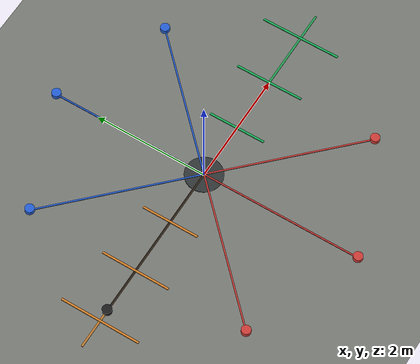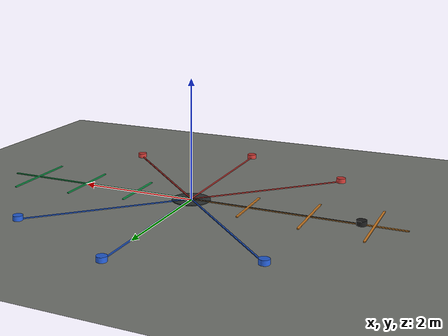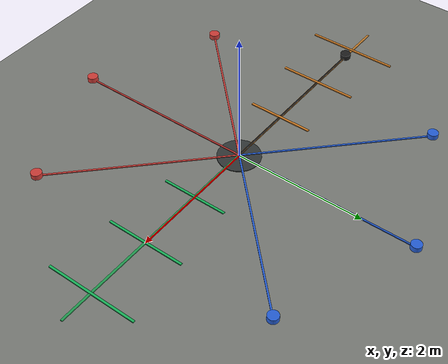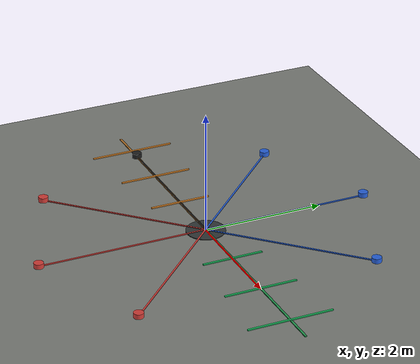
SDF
<?xml version="1.0"?>
<sdf version="1.9">
  <world name="brover_e5_calibration_world">
    <plugin filename="gz-sim-physics-system" name="gz::sim::systems::Physics"/>
    <plugin filename="gz-sim-user-commands-system" name="gz::sim::systems::UserCommands"/>
    <plugin filename="gz-sim-scene-broadcaster-system" name="gz::sim::systems::SceneBroadcaster"/>
    <plugin filename="gz-sim-sensors-system" name="gz::sim::systems::Sensors">
      <render_engine>ogre2</render_engine>
    </plugin>

    <gravity>0 0 -9.81</gravity>
    <atmosphere type="adiabatic"/>
    <scene>
      <ambient>0.36 0.36 0.36 1</ambient>
      <background>0.68 0.71 0.74 1</background>
      <shadows>true</shadows>
    </scene>

    <light name="sun" type="directional">
      <cast_shadows>true</cast_shadows>
      <pose>0 0 10 0 0 0</pose>
      <diffuse>0.95 0.95 0.90 1</diffuse>
      <specular>0.10 0.10 0.10 1</specular>
      <direction>-0.45 0.25 -0.86</direction>
    </light>

    <model name="ground_plane">
      <static>true</static>
      <link name="link">
        <collision name="collision">
          <geometry>
            <plane>
              <normal>0 0 1</normal>
              <size>10 10</size>
            </plane>
          </geometry>
          <surface>
            <friction>
              <ode>
                <mu>1.0</mu>
                <mu2>1.0</mu2>
              </ode>
            </friction>
          </surface>
        </collision>
        <visual name="visual">
          <geometry>
            <plane>
              <normal>0 0 1</normal>
              <size>10 10</size>
            </plane>
          </geometry>
          <material>
            <ambient>0.48 0.49 0.47 1</ambient>
            <diffuse>0.48 0.49 0.47 1</diffuse>
            <specular>0.02 0.02 0.02 1</specular>
          </material>
        </visual>
      </link>
    </model>

    <model name="start_origin_marker">
      <static>true</static>
      <pose>0 0 0.006 0 0 0</pose>
      <link name="link">
        <visual name="visual">
          <geometry><cylinder><radius>0.32</radius><length>0.012</length></cylinder></geometry>
          <material><diffuse>0.20 0.22 0.22 1</diffuse></material>
        </visual>
      </link>
    </model>

    <model name="forward_ruler_axis_positive_x">
      <static>true</static>
      <pose>1.75 0 0.012 0 0 0</pose>
      <link name="link">
        <visual name="visual">
          <geometry><box><size>3.5 0.035 0.014</size></box></geometry>
          <material><diffuse>0.14 0.62 0.32 1</diffuse></material>
        </visual>
      </link>
    </model>

    <model name="backward_ruler_axis_negative_x">
      <static>true</static>
      <pose>-1.75 0 0.012 0 0 0</pose>
      <link name="link">
        <visual name="visual">
          <geometry><box><size>3.5 0.035 0.014</size></box></geometry>
          <material><diffuse>0.74 0.48 0.18 1</diffuse></material>
        </visual>
      </link>
    </model>

    <model name="meter_tick_plus_1m">
      <static>true</static>
      <pose>1 0 0.018 0 0 0</pose>
      <link name="link">
        <visual name="visual">
          <geometry><box><size>0.035 1.0 0.016</size></box></geometry>
          <material><diffuse>0.10 0.72 0.36 1</diffuse></material>
        </visual>
      </link>
    </model>

    <model name="meter_tick_plus_2m">
      <static>true</static>
      <pose>2 0 0.018 0 0 0</pose>
      <link name="link">
        <visual name="visual">
          <geometry><box><size>0.035 1.2 0.016</size></box></geometry>
          <material><diffuse>0.10 0.72 0.36 1</diffuse></material>
        </visual>
      </link>
    </model>

    <model name="meter_tick_plus_3m">
      <static>true</static>
      <pose>3 0 0.018 0 0 0</pose>
      <link name="link">
        <visual name="visual">
          <geometry><box><size>0.035 1.4 0.016</size></box></geometry>
          <material><diffuse>0.10 0.72 0.36 1</diffuse></material>
        </visual>
      </link>
    </model>

    <model name="meter_tick_minus_1m">
      <static>true</static>
      <pose>-1 0 0.018 0 0 0</pose>
      <link name="link">
        <visual name="visual">
          <geometry><box><size>0.035 1.0 0.016</size></box></geometry>
          <material><diffuse>0.86 0.52 0.16 1</diffuse></material>
        </visual>
      </link>
    </model>

    <model name="meter_tick_minus_2m">
      <static>true</static>
      <pose>-2 0 0.018 0 0 0</pose>
      <link name="link">
        <visual name="visual">
          <geometry><box><size>0.035 1.2 0.016</size></box></geometry>
          <material><diffuse>0.86 0.52 0.16 1</diffuse></material>
        </visual>
      </link>
    </model>

    <model name="meter_tick_minus_3m">
      <static>true</static>
      <pose>-3 0 0.018 0 0 0</pose>
      <link name="link">
        <visual name="visual">
          <geometry><box><size>0.035 1.4 0.016</size></box></geometry>
          <material><diffuse>0.86 0.52 0.16 1</diffuse></material>
        </visual>
      </link>
    </model>

    <model name="angle_ray_45_deg">
      <static>true</static>
      <pose>0.98995 0.98995 0.014 0 0 0.785398</pose>
      <link name="link">
        <visual name="visual">
          <geometry><box><size>2.8 0.025 0.014</size></box></geometry>
          <material><diffuse>0.15 0.38 0.86 1</diffuse></material>
        </visual>
      </link>
    </model>

    <model name="angle_ray_90_deg">
      <static>true</static>
      <pose>0 1.4 0.014 0 0 1.570796</pose>
      <link name="link">
        <visual name="visual">
          <geometry><box><size>2.8 0.025 0.014</size></box></geometry>
          <material><diffuse>0.15 0.38 0.86 1</diffuse></material>
        </visual>
      </link>
    </model>

    <model name="angle_ray_135_deg">
      <static>true</static>
      <pose>-0.98995 0.98995 0.014 0 0 2.356194</pose>
      <link name="link">
        <visual name="visual">
          <geometry><box><size>2.8 0.025 0.014</size></box></geometry>
          <material><diffuse>0.15 0.38 0.86 1</diffuse></material>
        </visual>
      </link>
    </model>

    <model name="angle_ray_180_deg">
      <static>true</static>
      <pose>-1.4 0 0.014 0 0 3.141593</pose>
      <link name="link">
        <visual name="visual">
          <geometry><box><size>2.8 0.025 0.014</size></box></geometry>
          <material><diffuse>0.12 0.12 0.12 1</diffuse></material>
        </visual>
      </link>
    </model>

    <model name="angle_ray_minus_45_deg">
      <static>true</static>
      <pose>0.98995 -0.98995 0.014 0 0 -0.785398</pose>
      <link name="link">
        <visual name="visual">
          <geometry><box><size>2.8 0.025 0.014</size></box></geometry>
          <material><diffuse>0.82 0.24 0.22 1</diffuse></material>
        </visual>
      </link>
    </model>

    <model name="angle_ray_minus_90_deg">
      <static>true</static>
      <pose>0 -1.4 0.014 0 0 -1.570796</pose>
      <link name="link">
        <visual name="visual">
          <geometry><box><size>2.8 0.025 0.014</size></box></geometry>
          <material><diffuse>0.82 0.24 0.22 1</diffuse></material>
        </visual>
      </link>
    </model>

    <model name="angle_ray_minus_135_deg">
      <static>true</static>
      <pose>-0.98995 -0.98995 0.014 0 0 -2.356194</pose>
      <link name="link">
        <visual name="visual">
          <geometry><box><size>2.8 0.025 0.014</size></box></geometry>
          <material><diffuse>0.82 0.24 0.22 1</diffuse></material>
        </visual>
      </link>
    </model>

    <model name="angle_endpoint_45_deg">
      <static>true</static>
      <pose>1.9799 1.9799 0.04 0 0 0</pose>
      <link name="link">
        <visual name="visual">
          <geometry><cylinder><radius>0.08</radius><length>0.08</length></cylinder></geometry>
          <material><diffuse>0.15 0.38 0.86 1</diffuse></material>
        </visual>
      </link>
    </model>

    <model name="angle_endpoint_90_deg">
      <static>true</static>
      <pose>0 2.8 0.04 0 0 0</pose>
      <link name="link">
        <visual name="visual">
          <geometry><cylinder><radius>0.08</radius><length>0.08</length></cylinder></geometry>
          <material><diffuse>0.15 0.38 0.86 1</diffuse></material>
        </visual>
      </link>
    </model>

    <model name="angle_endpoint_135_deg">
      <static>true</static>
      <pose>-1.9799 1.9799 0.04 0 0 0</pose>
      <link name="link">
        <visual name="visual">
          <geometry><cylinder><radius>0.08</radius><length>0.08</length></cylinder></geometry>
          <material><diffuse>0.15 0.38 0.86 1</diffuse></material>
        </visual>
      </link>
    </model>

    <model name="angle_endpoint_180_deg">
      <static>true</static>
      <pose>-2.8 0 0.04 0 0 0</pose>
      <link name="link">
        <visual name="visual">
          <geometry><cylinder><radius>0.08</radius><length>0.08</length></cylinder></geometry>
          <material><diffuse>0.12 0.12 0.12 1</diffuse></material>
        </visual>
      </link>
    </model>

    <model name="angle_endpoint_minus_45_deg">
      <static>true</static>
      <pose>1.9799 -1.9799 0.04 0 0 0</pose>
      <link name="link">
        <visual name="visual">
          <geometry><cylinder><radius>0.08</radius><length>0.08</length></cylinder></geometry>
          <material><diffuse>0.82 0.24 0.22 1</diffuse></material>
        </visual>
      </link>
    </model>

    <model name="angle_endpoint_minus_90_deg">
      <static>true</static>
      <pose>0 -2.8 0.04 0 0 0</pose>
      <link name="link">
        <visual name="visual">
          <geometry><cylinder><radius>0.08</radius><length>0.08</length></cylinder></geometry>
          <material><diffuse>0.82 0.24 0.22 1</diffuse></material>
        </visual>
      </link>
    </model>

    <model name="angle_endpoint_minus_135_deg">
      <static>true</static>
      <pose>-1.9799 -1.9799 0.04 0 0 0</pose>
      <link name="link">
        <visual name="visual">
          <geometry><cylinder><radius>0.08</radius><length>0.08</length></cylinder></geometry>
          <material><diffuse>0.82 0.24 0.22 1</diffuse></material>
        </visual>
      </link>
    </model>
  </world>
</sdf>
